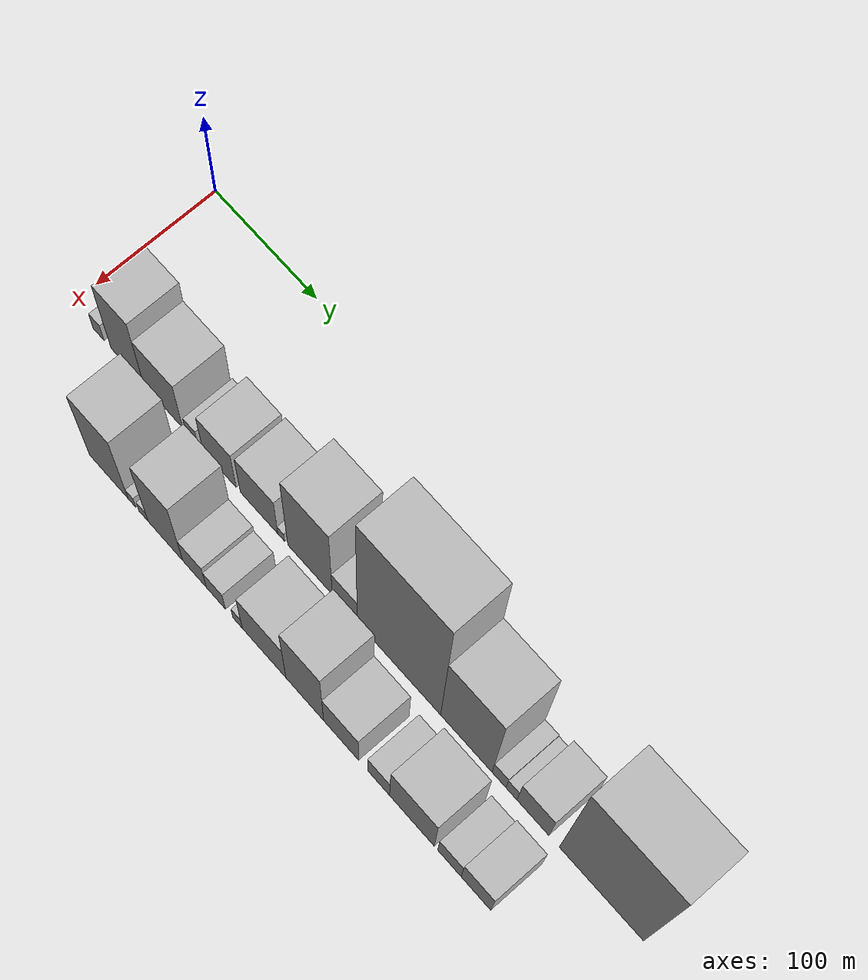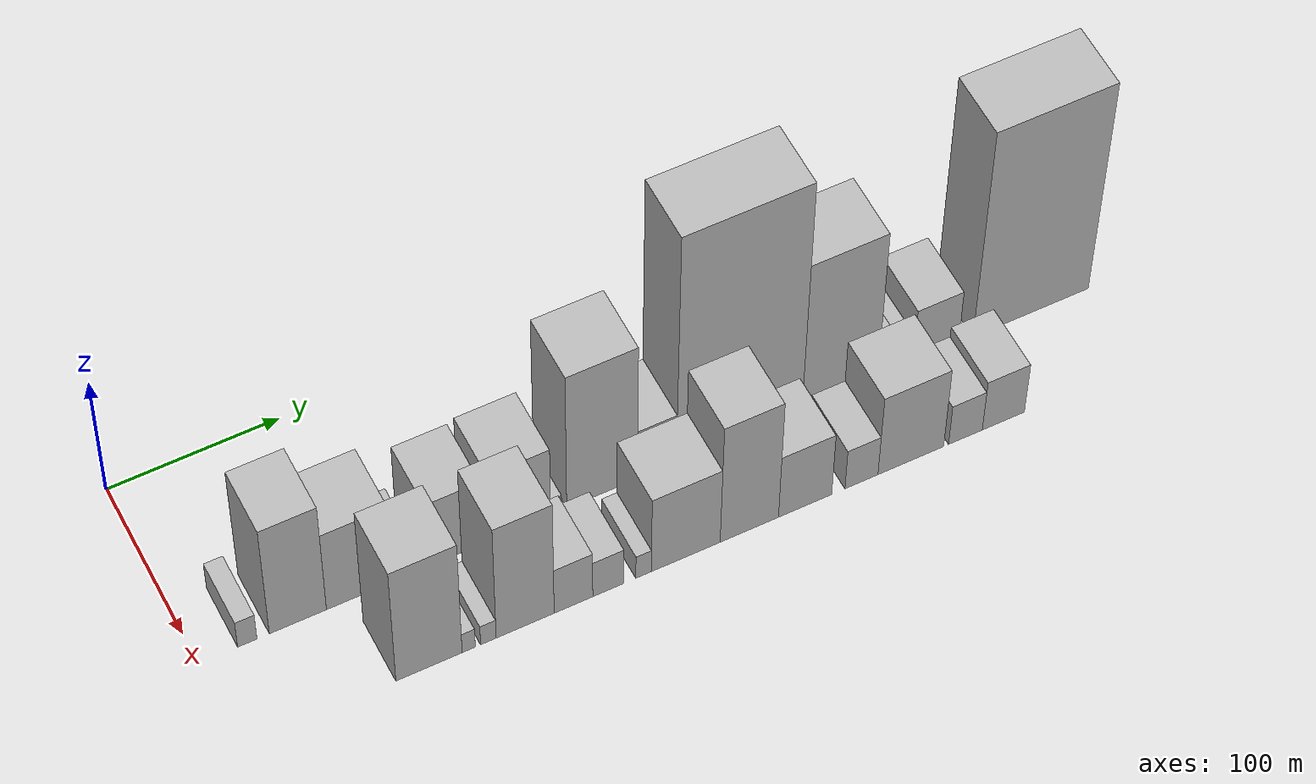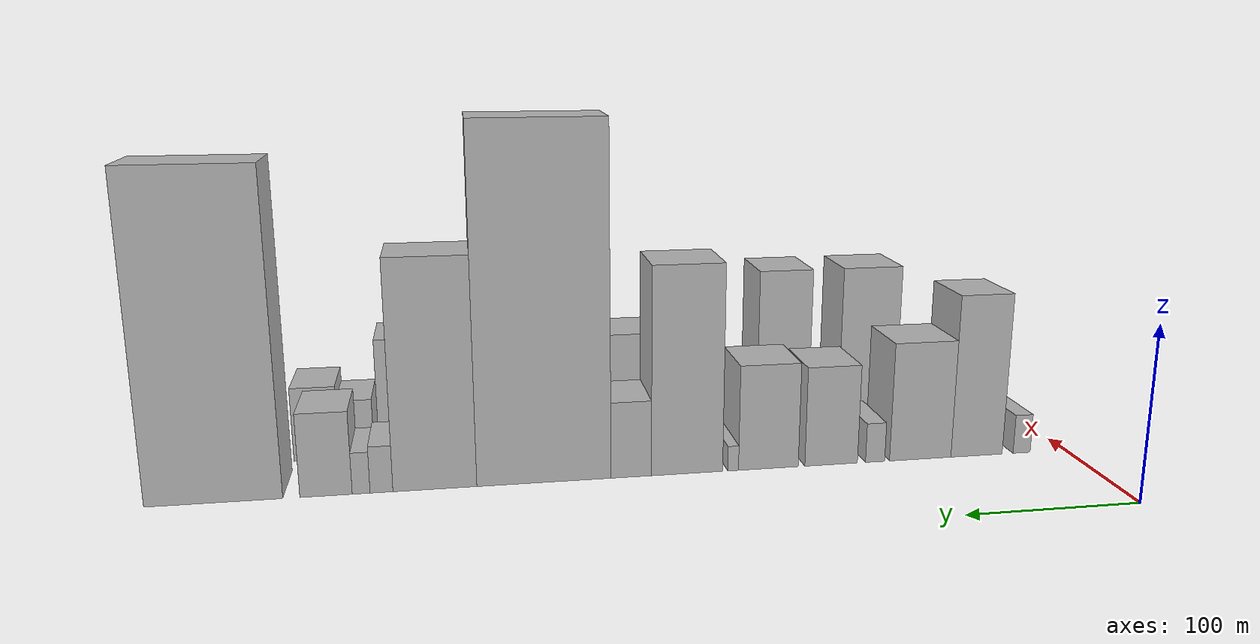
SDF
<sdf version="1.6">
 <world name="default">
  <model name="building_13">
   <static>1</static>
   <pose>100.0000 27.9162 0 0.000000 0.000000 0.000000</pose>
   <link name="link">
    <pose>0 0 12.00 0 0 0</pose>
    <collision name="collision"><geometry><box><size>40.0000 10.9775 24.0000</size></box></geometry></collision>
    <visual name="visual">
     <cast_shadows>0</cast_shadows>
     <geometry><box><size>40.0000 10.9775 24.0000</size></box></geometry>
     <material>
      <script>
       <uri>model://HANNAS_wall/materials/scripts</uri>
       <uri>model://HANNAS_wall/materials/textures</uri>
       <name>vrc/HANNAS_wall</name>
      </script>
     </material>
    </visual>
   </link>
  </model>
  <model name="building_14">
   <static>1</static>
   <pose>100.0000 56.6942 0 0.000000 0.000000 0.000000</pose>
   <link name="link">
    <pose>0 0 49.50 0 0 0</pose>
    <collision name="collision"><geometry><box><size>40.0000 32.5785 99.0000</size></box></geometry></collision>
    <visual name="visual">
     <cast_shadows>0</cast_shadows>
     <geometry><box><size>40.0000 32.5785 99.0000</size></box></geometry>
     <material>
      <script>
       <uri>model://HANNAS_wall/materials/scripts</uri>
       <uri>model://HANNAS_wall/materials/textures</uri>
       <name>vrc/HANNAS_wall</name>
      </script>
     </material>
    </visual>
   </link>
  </model>
  <model name="building_15">
   <static>1</static>
   <pose>100.0000 92.1852 0 0.000000 0.000000 0.000000</pose>
   <link name="link">
    <pose>0 0 36.00 0 0 0</pose>
    <collision name="collision"><geometry><box><size>40.0000 38.4035 72.0000</size></box></geometry></collision>
    <visual name="visual">
     <cast_shadows>0</cast_shadows>
     <geometry><box><size>40.0000 38.4035 72.0000</size></box></geometry>
     <material>
      <script>
       <uri>model://HANNAS_wall/materials/scripts</uri>
       <uri>model://HANNAS_wall/materials/textures</uri>
       <name>vrc/HANNAS_wall</name>
      </script>
     </material>
    </visual>
   </link>
  </model>
  <model name="building_16">
   <static>1</static>
   <pose>100.0000 120.2889 0 0.000000 0.000000 0.000000</pose>
   <link name="link">
    <pose>0 0 12.00 0 0 0</pose>
    <collision name="collision"><geometry><box><size>40.0000 11.8039 24.0000</size></box></geometry></collision>
    <visual name="visual">
     <cast_shadows>0</cast_shadows>
     <geometry><box><size>40.0000 11.8039 24.0000</size></box></geometry>
     <material>
      <script>
       <uri>model://HANNAS_wall/materials/scripts</uri>
       <uri>model://HANNAS_wall/materials/textures</uri>
       <name>vrc/HANNAS_wall</name>
      </script>
     </material>
    </visual>
   </link>
  </model>
  <model name="building_17">
   <static>1</static>
   <pose>100.0000 147.2270 0 0.000000 0.000000 0.000000</pose>
   <link name="link">
    <pose>0 0 30.00 0 0 0</pose>
    <collision name="collision"><geometry><box><size>40.0000 32.0724 60.0000</size></box></geometry></collision>
    <visual name="visual">
     <cast_shadows>0</cast_shadows>
     <geometry><box><size>40.0000 32.0724 60.0000</size></box></geometry>
     <material>
      <script>
       <uri>model://HANNAS_wall/materials/scripts</uri>
       <uri>model://HANNAS_wall/materials/textures</uri>
       <name>vrc/HANNAS_wall</name>
      </script>
     </material>
    </visual>
   </link>
  </model>
  <model name="building_18">
   <static>1</static>
   <pose>100.0000 185.1688 0 0.000000 0.000000 0.000000</pose>
   <link name="link">
    <pose>0 0 31.50 0 0 0</pose>
    <collision name="collision"><geometry><box><size>40.0000 35.8112 63.0000</size></box></geometry></collision>
    <visual name="visual">
     <cast_shadows>0</cast_shadows>
     <geometry><box><size>40.0000 35.8112 63.0000</size></box></geometry>
     <material>
      <script>
       <uri>model://HANNAS_wall/materials/scripts</uri>
       <uri>model://HANNAS_wall/materials/textures</uri>
       <name>vrc/HANNAS_wall</name>
      </script>
     </material>
    </visual>
   </link>
  </model>
  <model name="building_19">
   <static>1</static>
   <pose>100.0000 206.2844 0 0.000000 0.000000 0.000000</pose>
   <link name="link">
    <pose>0 0 7.50 0 0 0</pose>
    <collision name="collision"><geometry><box><size>40.0000 6.4200 15.0000</size></box></geometry></collision>
    <visual name="visual">
     <cast_shadows>0</cast_shadows>
     <geometry><box><size>40.0000 6.4200 15.0000</size></box></geometry>
     <material>
      <script>
       <uri>model://HANNAS_wall/materials/scripts</uri>
       <uri>model://HANNAS_wall/materials/textures</uri>
       <name>vrc/HANNAS_wall</name>
      </script>
     </material>
    </visual>
   </link>
  </model>
  <model name="building_20">
   <static>1</static>
   <pose>100.0000 233.3649 0 0.000000 0.000000 0.000000</pose>
   <link name="link">
    <pose>0 0 61.50 0 0 0</pose>
    <collision name="collision"><geometry><box><size>40.0000 41.7410 123.0000</size></box></geometry></collision>
    <visual name="visual">
     <cast_shadows>0</cast_shadows>
     <geometry><box><size>40.0000 41.7410 123.0000</size></box></geometry>
     <material>
      <script>
       <uri>model://HANNAS_wall/materials/scripts</uri>
       <uri>model://HANNAS_wall/materials/textures</uri>
       <name>vrc/HANNAS_wall</name>
      </script>
     </material>
    </visual>
   </link>
  </model>
  <model name="building_21">
   <static>1</static>
   <pose>100.0000 265.9006 0 0.000000 0.000000 0.000000</pose>
   <link name="link">
    <pose>0 0 22.50 0 0 0</pose>
    <collision name="collision"><geometry><box><size>40.0000 23.3303 45.0000</size></box></geometry></collision>
    <visual name="visual">
     <cast_shadows>0</cast_shadows>
     <geometry><box><size>40.0000 23.3303 45.0000</size></box></geometry>
     <material>
      <script>
       <uri>model://HANNAS_wall/materials/scripts</uri>
       <uri>model://HANNAS_wall/materials/textures</uri>
       <name>vrc/HANNAS_wall</name>
      </script>
     </material>
    </visual>
   </link>
  </model>
  <model name="building_22">
   <static>1</static>
   <pose>100.0000 315.4582 0 0.000000 0.000000 0.000000</pose>
   <link name="link">
    <pose>0 0 102.00 0 0 0</pose>
    <collision name="collision"><geometry><box><size>40.0000 75.7849 204.0000</size></box></geometry></collision>
    <visual name="visual">
     <cast_shadows>0</cast_shadows>
     <geometry><box><size>40.0000 75.7849 204.0000</size></box></geometry>
     <material>
      <script>
       <uri>model://HANNAS_wall/materials/scripts</uri>
       <uri>model://HANNAS_wall/materials/textures</uri>
       <name>vrc/HANNAS_wall</name>
      </script>
     </material>
    </visual>
   </link>
  </model>
  <model name="building_23">
   <static>1</static>
   <pose>100.0000 376.3671 0 0.000000 0.000000 0.000000</pose>
   <link name="link">
    <pose>0 0 66.00 0 0 0</pose>
    <collision name="collision"><geometry><box><size>40.0000 46.0330 132.0000</size></box></geometry></collision>
    <visual name="visual">
     <cast_shadows>0</cast_shadows>
     <geometry><box><size>40.0000 46.0330 132.0000</size></box></geometry>
     <material>
      <script>
       <uri>model://HANNAS_wall/materials/scripts</uri>
       <uri>model://HANNAS_wall/materials/textures</uri>
       <name>vrc/HANNAS_wall</name>
      </script>
     </material>
    </visual>
   </link>
  </model>
  <model name="building_24">
   <static>1</static>
   <pose>100.0000 405.5553 0 0.000000 0.000000 0.000000</pose>
   <link name="link">
    <pose>0 0 13.50 0 0 0</pose>
    <collision name="collision"><geometry><box><size>40.0000 12.3434 27.0000</size></box></geometry></collision>
    <visual name="visual">
     <cast_shadows>0</cast_shadows>
     <geometry><box><size>40.0000 12.3434 27.0000</size></box></geometry>
     <material>
      <script>
       <uri>model://HANNAS_wall/materials/scripts</uri>
       <uri>model://HANNAS_wall/materials/textures</uri>
       <name>vrc/HANNAS_wall</name>
      </script>
     </material>
    </visual>
   </link>
  </model>
  <model name="building_25">
   <static>1</static>
   <pose>100.0000 416.5286 0 0.000000 0.000000 0.000000</pose>
   <link name="link">
    <pose>0 0 12.00 0 0 0</pose>
    <collision name="collision"><geometry><box><size>40.0000 9.6032 24.0000</size></box></geometry></collision>
    <visual name="visual">
     <cast_shadows>0</cast_shadows>
     <geometry><box><size>40.0000 9.6032 24.0000</size></box></geometry>
     <material>
      <script>
       <uri>model://HANNAS_wall/materials/scripts</uri>
       <uri>model://HANNAS_wall/materials/textures</uri>
       <name>vrc/HANNAS_wall</name>
      </script>
     </material>
    </visual>
   </link>
  </model>
  <model name="building_26">
   <static>1</static>
   <pose>100.0000 435.3020 0 0.000000 0.000000 0.000000</pose>
   <link name="link">
    <pose>0 0 24.00 0 0 0</pose>
    <collision name="collision"><geometry><box><size>40.0000 27.9434 48.0000</size></box></geometry></collision>
    <visual name="visual">
     <cast_shadows>0</cast_shadows>
     <geometry><box><size>40.0000 27.9434 48.0000</size></box></geometry>
     <material>
      <script>
       <uri>model://HANNAS_wall/materials/scripts</uri>
       <uri>model://HANNAS_wall/materials/textures</uri>
       <name>vrc/HANNAS_wall</name>
      </script>
     </material>
    </visual>
   </link>
  </model>
  <model name="building_27">
   <static>1</static>
   <pose>100.0000 494.3336 0 0.000000 0.000000 0.000000</pose>
   <link name="link">
    <pose>0 0 91.50 0 0 0</pose>
    <collision name="collision"><geometry><box><size>40.0000 72.1199 183.0000</size></box></geometry></collision>
    <visual name="visual">
     <cast_shadows>0</cast_shadows>
     <geometry><box><size>40.0000 72.1199 183.0000</size></box></geometry>
     <material>
      <script>
       <uri>model://HANNAS_wall/materials/scripts</uri>
       <uri>model://HANNAS_wall/materials/textures</uri>
       <name>vrc/HANNAS_wall</name>
      </script>
     </material>
    </visual>
   </link>
  </model>
  <model name="building_43">
   <static>1</static>
   <pose>155.0000 106.0111 0 0.000000 0.000000 0.000000</pose>
   <link name="link">
    <pose>0 0 52.50 0 0 0</pose>
    <collision name="collision"><geometry><box><size>40.0000 37.8560 105.0000</size></box></geometry></collision>
    <visual name="visual">
     <cast_shadows>0</cast_shadows>
     <geometry><box><size>40.0000 37.8560 105.0000</size></box></geometry>
     <material>
      <script>
       <uri>model://HANNAS_wall/materials/scripts</uri>
       <uri>model://HANNAS_wall/materials/textures</uri>
       <name>vrc/HANNAS_wall</name>
      </script>
     </material>
    </visual>
   </link>
  </model>
  <model name="building_44">
   <static>1</static>
   <pose>155.0000 128.7403 0 0.000000 0.000000 0.000000</pose>
   <link name="link">
    <pose>0 0 9.00 0 0 0</pose>
    <collision name="collision"><geometry><box><size>40.0000 7.6025 18.0000</size></box></geometry></collision>
    <visual name="visual">
     <cast_shadows>0</cast_shadows>
     <geometry><box><size>40.0000 7.6025 18.0000</size></box></geometry>
     <material>
      <script>
       <uri>model://HANNAS_wall/materials/scripts</uri>
       <uri>model://HANNAS_wall/materials/textures</uri>
       <name>vrc/HANNAS_wall</name>
      </script>
     </material>
    </visual>
   </link>
  </model>
  <model name="building_45">
   <static>1</static>
   <pose>155.0000 140.0113 0 0.000000 0.000000 0.000000</pose>
   <link name="link">
    <pose>0 0 9.00 0 0 0</pose>
    <collision name="collision"><geometry><box><size>40.0000 8.9395 18.0000</size></box></geometry></collision>
    <visual name="visual">
     <cast_shadows>0</cast_shadows>
     <geometry><box><size>40.0000 8.9395 18.0000</size></box></geometry>
     <material>
      <script>
       <uri>model://HANNAS_wall/materials/scripts</uri>
       <uri>model://HANNAS_wall/materials/textures</uri>
       <name>vrc/HANNAS_wall</name>
      </script>
     </material>
    </visual>
   </link>
  </model>
  <model name="building_46">
   <static>1</static>
   <pose>155.0000 161.2486 0 0.000000 0.000000 0.000000</pose>
   <link name="link">
    <pose>0 0 52.50 0 0 0</pose>
    <collision name="collision"><geometry><box><size>40.0000 33.5350 105.0000</size></box></geometry></collision>
    <visual name="visual">
     <cast_shadows>0</cast_shadows>
     <geometry><box><size>40.0000 33.5350 105.0000</size></box></geometry>
     <material>
      <script>
       <uri>model://HANNAS_wall/materials/scripts</uri>
       <uri>model://HANNAS_wall/materials/textures</uri>
       <name>vrc/HANNAS_wall</name>
      </script>
     </material>
    </visual>
   </link>
  </model>
  <model name="building_47">
   <static>1</static>
   <pose>155.0000 189.2490 0 0.000000 0.000000 0.000000</pose>
   <link name="link">
    <pose>0 0 21.00 0 0 0</pose>
    <collision name="collision"><geometry><box><size>40.0000 22.4658 42.0000</size></box></geometry></collision>
    <visual name="visual">
     <cast_shadows>0</cast_shadows>
     <geometry><box><size>40.0000 22.4658 42.0000</size></box></geometry>
     <material>
      <script>
       <uri>model://HANNAS_wall/materials/scripts</uri>
       <uri>model://HANNAS_wall/materials/textures</uri>
       <name>vrc/HANNAS_wall</name>
      </script>
     </material>
    </visual>
   </link>
  </model>
  <model name="building_48">
   <static>1</static>
   <pose>155.0000 209.5497 0 0.000000 0.000000 0.000000</pose>
   <link name="link">
    <pose>0 0 16.50 0 0 0</pose>
    <collision name="collision"><geometry><box><size>40.0000 18.1357 33.0000</size></box></geometry></collision>
    <visual name="visual">
     <cast_shadows>0</cast_shadows>
     <geometry><box><size>40.0000 18.1357 33.0000</size></box></geometry>
     <material>
      <script>
       <uri>model://HANNAS_wall/materials/scripts</uri>
       <uri>model://HANNAS_wall/materials/textures</uri>
       <name>vrc/HANNAS_wall</name>
      </script>
     </material>
    </visual>
   </link>
  </model>
  <model name="building_49">
   <static>1</static>
   <pose>155.0000 230.1292 0 0.000000 0.000000 0.000000</pose>
   <link name="link">
    <pose>0 0 10.50 0 0 0</pose>
    <collision name="collision"><geometry><box><size>40.0000 9.0232 21.0000</size></box></geometry></collision>
    <visual name="visual">
     <cast_shadows>0</cast_shadows>
     <geometry><box><size>40.0000 9.0232 21.0000</size></box></geometry>
     <material>
      <script>
       <uri>model://HANNAS_wall/materials/scripts</uri>
       <uri>model://HANNAS_wall/materials/textures</uri>
       <name>vrc/HANNAS_wall</name>
      </script>
     </material>
    </visual>
   </link>
  </model>
  <model name="building_50">
   <static>1</static>
   <pose>155.0000 254.9763 0 0.000000 0.000000 0.000000</pose>
   <link name="link">
    <pose>0 0 34.50 0 0 0</pose>
    <collision name="collision"><geometry><box><size>40.0000 40.6709 69.0000</size></box></geometry></collision>
    <visual name="visual">
     <cast_shadows>0</cast_shadows>
     <geometry><box><size>40.0000 40.6709 69.0000</size></box></geometry>
     <material>
      <script>
       <uri>model://HANNAS_wall/materials/scripts</uri>
       <uri>model://HANNAS_wall/materials/textures</uri>
       <name>vrc/HANNAS_wall</name>
      </script>
     </material>
    </visual>
   </link>
  </model>
  <model name="building_51">
   <static>1</static>
   <pose>155.0000 292.6564 0 0.000000 0.000000 0.000000</pose>
   <link name="link">
    <pose>0 0 54.00 0 0 0</pose>
    <collision name="collision"><geometry><box><size>40.0000 34.6892 108.0000</size></box></geometry></collision>
    <visual name="visual">
     <cast_shadows>0</cast_shadows>
     <geometry><box><size>40.0000 34.6892 108.0000</size></box></geometry>
     <material>
      <script>
       <uri>model://HANNAS_wall/materials/scripts</uri>
       <uri>model://HANNAS_wall/materials/textures</uri>
       <name>vrc/HANNAS_wall</name>
      </script>
     </material>
    </visual>
   </link>
  </model>
  <model name="building_52">
   <static>1</static>
   <pose>155.0000 325.9232 0 0.000000 0.000000 0.000000</pose>
   <link name="link">
    <pose>0 0 28.50 0 0 0</pose>
    <collision name="collision"><geometry><box><size>40.0000 31.8444 57.0000</size></box></geometry></collision>
    <visual name="visual">
     <cast_shadows>0</cast_shadows>
     <geometry><box><size>40.0000 31.8444 57.0000</size></box></geometry>
     <material>
      <script>
       <uri>model://HANNAS_wall/materials/scripts</uri>
       <uri>model://HANNAS_wall/materials/textures</uri>
       <name>vrc/HANNAS_wall</name>
      </script>
     </material>
    </visual>
   </link>
  </model>
  <model name="building_53">
   <static>1</static>
   <pose>155.0000 359.7807 0 0.000000 0.000000 0.000000</pose>
   <link name="link">
    <pose>0 0 18.00 0 0 0</pose>
    <collision name="collision"><geometry><box><size>40.0000 19.8705 36.0000</size></box></geometry></collision>
    <visual name="visual">
     <cast_shadows>0</cast_shadows>
     <geometry><box><size>40.0000 19.8705 36.0000</size></box></geometry>
     <material>
      <script>
       <uri>model://HANNAS_wall/materials/scripts</uri>
       <uri>model://HANNAS_wall/materials/textures</uri>
       <name>vrc/HANNAS_wall</name>
      </script>
     </material>
    </visual>
   </link>
  </model>
  <model name="building_54">
   <static>1</static>
   <pose>155.0000 389.6644 0 0.000000 0.000000 0.000000</pose>
   <link name="link">
    <pose>0 0 36.00 0 0 0</pose>
    <collision name="collision"><geometry><box><size>40.0000 39.8970 72.0000</size></box></geometry></collision>
    <visual name="visual">
     <cast_shadows>0</cast_shadows>
     <geometry><box><size>40.0000 39.8970 72.0000</size></box></geometry>
     <material>
      <script>
       <uri>model://HANNAS_wall/materials/scripts</uri>
       <uri>model://HANNAS_wall/materials/textures</uri>
       <name>vrc/HANNAS_wall</name>
      </script>
     </material>
    </visual>
   </link>
  </model>
  <model name="building_55">
   <static>1</static>
   <pose>155.0000 422.9212 0 0.000000 0.000000 0.000000</pose>
   <link name="link">
    <pose>0 0 18.00 0 0 0</pose>
    <collision name="collision"><geometry><box><size>40.0000 20.6167 36.0000</size></box></geometry></collision>
    <visual name="visual">
     <cast_shadows>0</cast_shadows>
     <geometry><box><size>40.0000 20.6167 36.0000</size></box></geometry>
     <material>
      <script>
       <uri>model://HANNAS_wall/materials/scripts</uri>
       <uri>model://HANNAS_wall/materials/textures</uri>
       <name>vrc/HANNAS_wall</name>
      </script>
     </material>
    </visual>
   </link>
  </model>
  <model name="building_56">
   <static>1</static>
   <pose>155.0000 446.1482 0 0.000000 0.000000 0.000000</pose>
   <link name="link">
    <pose>0 0 22.50 0 0 0</pose>
    <collision name="collision"><geometry><box><size>40.0000 25.8373 45.0000</size></box></geometry></collision>
    <visual name="visual">
     <cast_shadows>0</cast_shadows>
     <geometry><box><size>40.0000 25.8373 45.0000</size></box></geometry>
     <material>
      <script>
       <uri>model://HANNAS_wall/materials/scripts</uri>
       <uri>model://HANNAS_wall/materials/textures</uri>
       <name>vrc/HANNAS_wall</name>
      </script>
     </material>
    </visual>
   </link>
  </model>
 </world>
</sdf>
